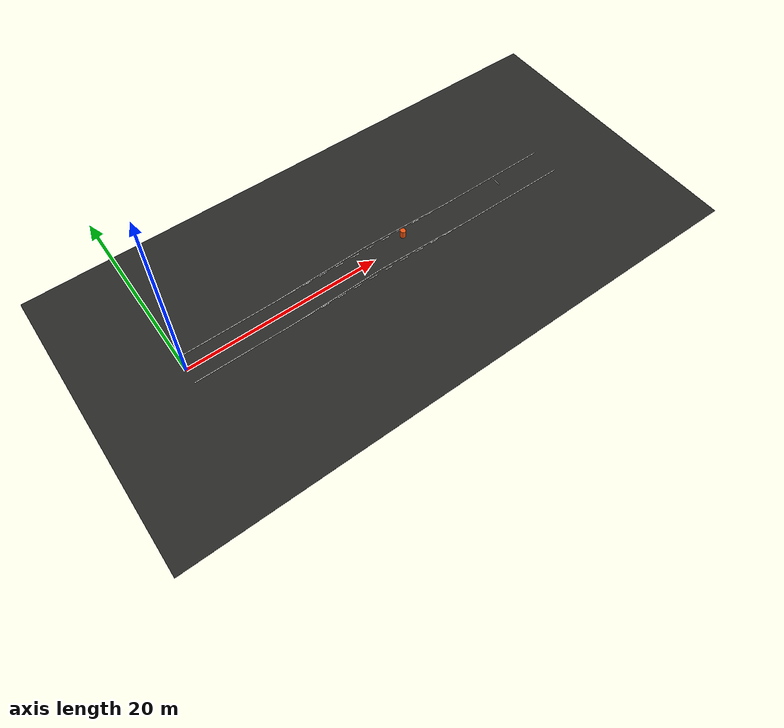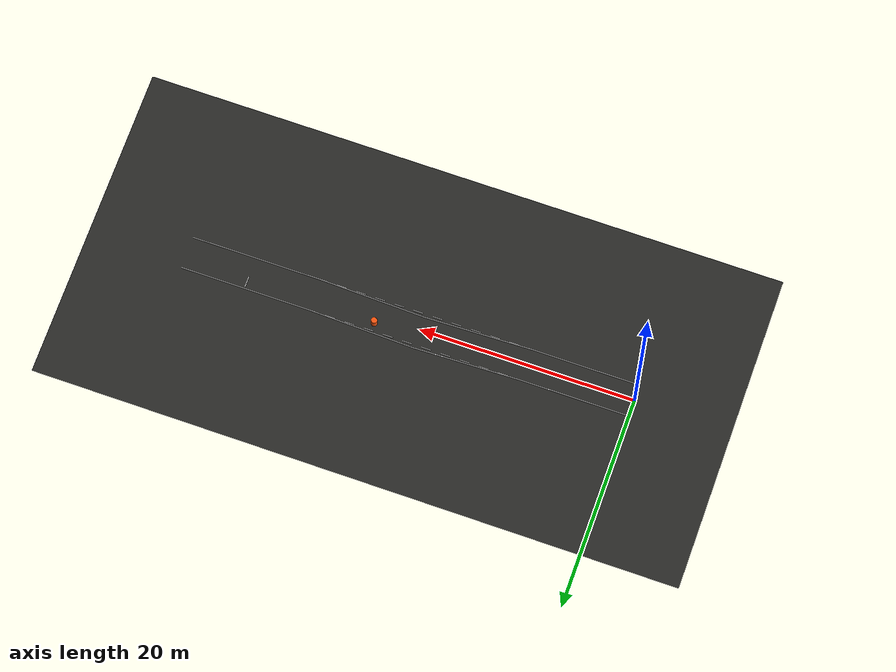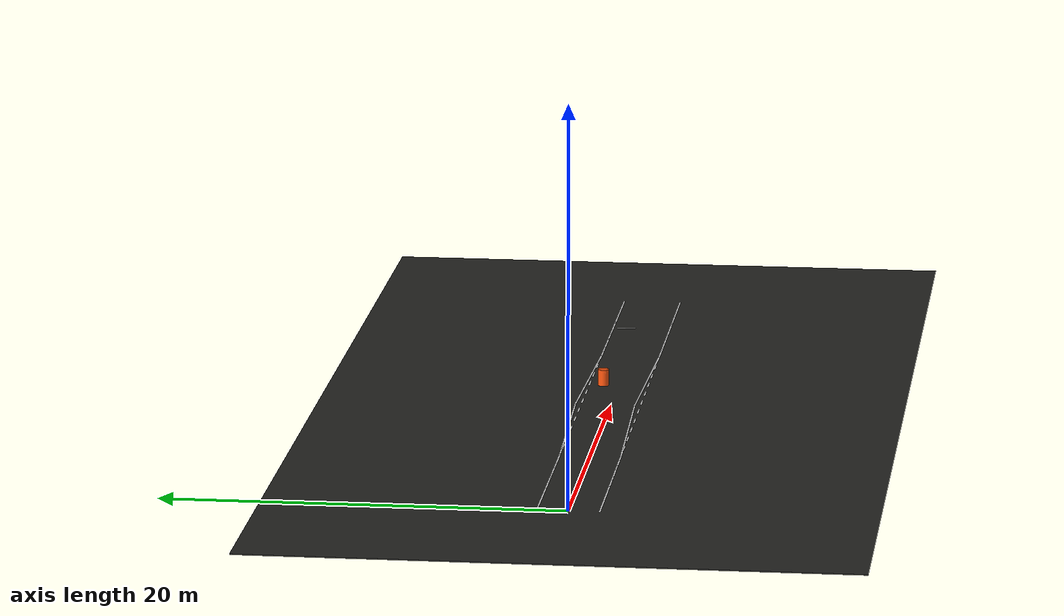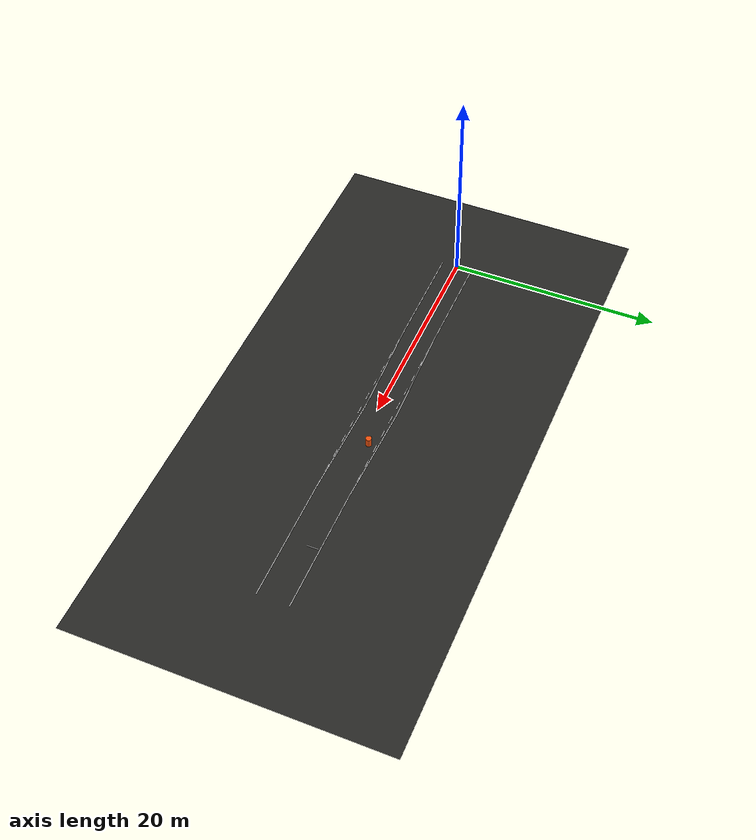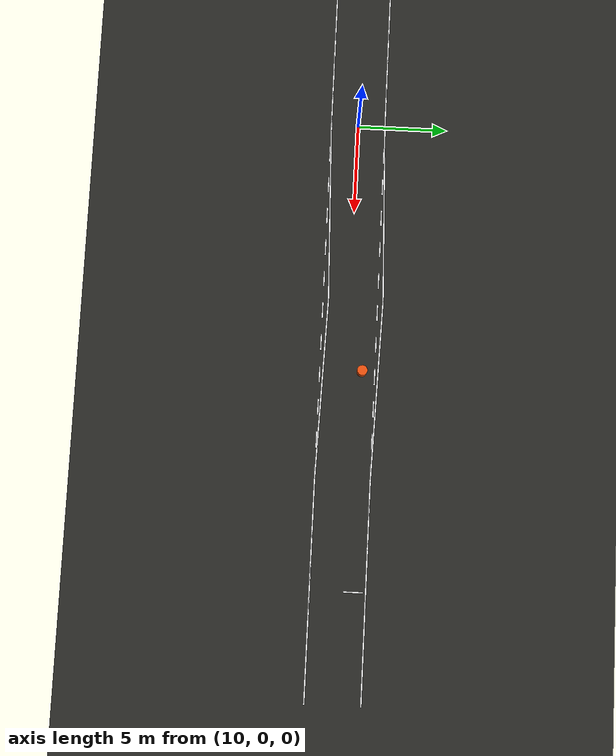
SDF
<sdf version="1.9">
 <world name="igvc_competition">
  <plugin filename="ignition-gazebo-physics-system" name="ignition::gazebo::systems::Physics"/>
  <plugin filename="ignition-gazebo-user-commands-system" name="ignition::gazebo::systems::UserCommands"/>
  <plugin filename="ignition-gazebo-scene-broadcaster-system" name="ignition::gazebo::systems::SceneBroadcaster"/>
  <plugin filename="ignition-gazebo-sensors-system" name="ignition::gazebo::systems::Sensors">
   <render_engine>ogre2</render_engine>
  </plugin>
  <light name="sun" type="directional">
   <pose>0 0 20 0 0 0</pose>
   <diffuse>0.8 0.8 0.75 1</diffuse>
   <specular>0.2 0.2 0.2 1</specular>
   <direction>-0.35 0.15 -0.92</direction>
  </light>
  <gravity>0 0 -9.80665</gravity>
  <magnetic_field>6e-06 2.3e-05 -4.2e-05</magnetic_field>
  <atmosphere type="adiabatic"/>
  <physics name="default_physics" type="ode">
   <max_step_size>0.010</max_step_size>
   <real_time_factor>1.0</real_time_factor>
   <real_time_update_rate>100</real_time_update_rate>
  </physics>
  <scene>
   <ambient>0.45 0.45 0.45 1</ambient>
   <background>0.70 0.72 0.75 1</background>
   <shadows>true</shadows>
  </scene>
  <spherical_coordinates>
   <surface_model>EARTH_WGS84</surface_model>
   <latitude_deg>37.23027000</latitude_deg>
   <longitude_deg>-80.42504000</longitude_deg>
   <elevation>650.000</elevation>
   <heading_deg>0</heading_deg>
  </spherical_coordinates>
  <model name="asphalt_ground">
   <static>1</static>
   <pose>21.0000 0.0000 -0.0250 0.000000 0.000000 0.000000</pose>
   <link name="link">
    <collision name="collision"><geometry><box><size>60.0000 30.0000 0.0500</size></box></geometry></collision>
    <visual name="visual">
     <geometry><box><size>60.0000 30.0000 0.0500</size></box></geometry>
     <material>
      <ambient>0.16 0.16 0.15 1.0</ambient>
      <diffuse>0.16 0.16 0.15 1.0</diffuse>
      <specular>0.05 0.05 0.05 1</specular>
     </material>
    </visual>
   </link>
  </model>
  <model name="left_boundary_0">
   <static>1</static>
   <pose>4.9886 1.5239 0.011 0 0 -0.000017</pose>
   <link name="link">
    <visual name="visual">
     <geometry><box><size>9.9771 0.0762 0.012</size></box></geometry>
     <material>
      <ambient>0.98 0.98 0.98 1</ambient>
      <diffuse>0.98 0.98 0.98 1</diffuse>
      <specular>0.05 0.05 0.05 1</specular>
      <emissive>0.9 0.9 0.9 1</emissive>
     </material>
    </visual>
   </link>
  </model>
  <model name="right_boundary_0">
   <static>1</static>
   <pose>5.0114 -1.5239 0.011 0 0 0.000017</pose>
   <link name="link">
    <visual name="visual">
     <geometry><box><size>10.0229 0.0762 0.012</size></box></geometry>
     <material>
      <ambient>0.98 0.98 0.98 1</ambient>
      <diffuse>0.98 0.98 0.98 1</diffuse>
      <specular>0.05 0.05 0.05 1</specular>
      <emissive>0.9 0.9 0.9 1</emissive>
     </material>
    </visual>
   </link>
  </model>
  <model name="left_boundary_1">
   <static>1</static>
   <pose>14.9886 1.6739 0.011 0 0 0.029940</pose>
   <link name="link">
    <visual name="visual">
     <geometry><box><size>10.0274 0.0762 0.012</size></box></geometry>
     <material>
      <ambient>0.98 0.98 0.98 1</ambient>
      <diffuse>0.98 0.98 0.98 1</diffuse>
      <specular>0.05 0.05 0.05 1</specular>
      <emissive>0.9 0.9 0.9 1</emissive>
     </material>
    </visual>
   </link>
  </model>
  <model name="right_boundary_1">
   <static>1</static>
   <pose>15.0114 -1.3739 0.011 0 0 0.030043</pose>
   <link name="link">
    <visual name="visual">
     <geometry><box><size>9.9816 0.0762 0.012</size></box></geometry>
     <material>
      <ambient>0.98 0.98 0.98 1</ambient>
      <diffuse>0.98 0.98 0.98 1</diffuse>
      <specular>0.05 0.05 0.05 1</specular>
      <emissive>0.9 0.9 0.9 1</emissive>
     </material>
    </visual>
   </link>
  </model>
  <model name="left_boundary_2">
   <static>1</static>
   <pose>25.0104 1.6739 0.011 0 0 -0.029943</pose>
   <link name="link">
    <visual name="visual">
     <geometry><box><size>10.0253 0.0762 0.012</size></box></geometry>
     <material>
      <ambient>0.98 0.98 0.98 1</ambient>
      <diffuse>0.98 0.98 0.98 1</diffuse>
      <specular>0.05 0.05 0.05 1</specular>
      <emissive>0.9 0.9 0.9 1</emissive>
     </material>
    </visual>
   </link>
  </model>
  <model name="right_boundary_2">
   <static>1</static>
   <pose>24.9896 -1.3739 0.011 0 0 -0.030039</pose>
   <link name="link">
    <visual name="visual">
     <geometry><box><size>9.9837 0.0762 0.012</size></box></geometry>
     <material>
      <ambient>0.98 0.98 0.98 1</ambient>
      <diffuse>0.98 0.98 0.98 1</diffuse>
      <specular>0.05 0.05 0.05 1</specular>
      <emissive>0.9 0.9 0.9 1</emissive>
     </material>
    </visual>
   </link>
  </model>
  <model name="left_boundary_3">
   <static>1</static>
   <pose>36.0104 1.5239 0.011 0 0 0.000012</pose>
   <link name="link">
    <visual name="visual">
     <geometry><box><size>11.9792 0.0762 0.012</size></box></geometry>
     <material>
      <ambient>0.98 0.98 0.98 1</ambient>
      <diffuse>0.98 0.98 0.98 1</diffuse>
      <specular>0.05 0.05 0.05 1</specular>
      <emissive>0.9 0.9 0.9 1</emissive>
     </material>
    </visual>
   </link>
  </model>
  <model name="right_boundary_3">
   <static>1</static>
   <pose>35.9896 -1.5239 0.011 0 0 -0.000012</pose>
   <link name="link">
    <visual name="visual">
     <geometry><box><size>12.0208 0.0762 0.012</size></box></geometry>
     <material>
      <ambient>0.98 0.98 0.98 1</ambient>
      <diffuse>0.98 0.98 0.98 1</diffuse>
      <specular>0.05 0.05 0.05 1</specular>
      <emissive>0.9 0.9 0.9 1</emissive>
     </material>
    </visual>
   </link>
  </model>
  <model name="internal_no_cross_far">
   <static>1</static>
   <pose>36.0000 0.8500 0.011 0 0 -1.570796</pose>
   <link name="link">
    <visual name="visual">
     <geometry><box><size>1.1000 0.0762 0.012</size></box></geometry>
     <material>
      <ambient>0.98 0.98 0.98 1</ambient>
      <diffuse>0.98 0.98 0.98 1</diffuse>
      <specular>0.05 0.05 0.05 1</specular>
      <emissive>0.9 0.9 0.9 1</emissive>
     </material>
    </visual>
   </link>
  </model>
  <model name="dashed_left_long_0">
   <static>1</static>
   <pose>4.4500 1.5240 0.011 0 0 0.000000</pose>
   <link name="link">
    <visual name="visual">
     <geometry><box><size>0.9000 0.0762 0.012</size></box></geometry>
     <material>
      <ambient>0.98 0.98 0.98 1</ambient>
      <diffuse>0.98 0.98 0.98 1</diffuse>
      <specular>0.05 0.05 0.05 1</specular>
      <emissive>0.9 0.9 0.9 1</emissive>
     </material>
    </visual>
   </link>
  </model>
  <model name="dashed_left_long_1">
   <static>1</static>
   <pose>6.2500 1.5240 0.011 0 0 0.000000</pose>
   <link name="link">
    <visual name="visual">
     <geometry><box><size>0.9000 0.0762 0.012</size></box></geometry>
     <material>
      <ambient>0.98 0.98 0.98 1</ambient>
      <diffuse>0.98 0.98 0.98 1</diffuse>
      <specular>0.05 0.05 0.05 1</specular>
      <emissive>0.9 0.9 0.9 1</emissive>
     </material>
    </visual>
   </link>
  </model>
  <model name="dashed_left_long_2">
   <static>1</static>
   <pose>8.0500 1.5240 0.011 0 0 0.000000</pose>
   <link name="link">
    <visual name="visual">
     <geometry><box><size>0.9000 0.0762 0.012</size></box></geometry>
     <material>
      <ambient>0.98 0.98 0.98 1</ambient>
      <diffuse>0.98 0.98 0.98 1</diffuse>
      <specular>0.05 0.05 0.05 1</specular>
      <emissive>0.9 0.9 0.9 1</emissive>
     </material>
    </visual>
   </link>
  </model>
  <model name="dashed_left_long_3">
   <static>1</static>
   <pose>9.8500 1.5240 0.011 0 0 0.000000</pose>
   <link name="link">
    <visual name="visual">
     <geometry><box><size>0.9000 0.0762 0.012</size></box></geometry>
     <material>
      <ambient>0.98 0.98 0.98 1</ambient>
      <diffuse>0.98 0.98 0.98 1</diffuse>
      <specular>0.05 0.05 0.05 1</specular>
      <emissive>0.9 0.9 0.9 1</emissive>
     </material>
    </visual>
   </link>
  </model>
  <model name="dashed_left_long_4">
   <static>1</static>
   <pose>11.6500 1.5240 0.011 0 0 0.000000</pose>
   <link name="link">
    <visual name="visual">
     <geometry><box><size>0.9000 0.0762 0.012</size></box></geometry>
     <material>
      <ambient>0.98 0.98 0.98 1</ambient>
      <diffuse>0.98 0.98 0.98 1</diffuse>
      <specular>0.05 0.05 0.05 1</specular>
      <emissive>0.9 0.9 0.9 1</emissive>
     </material>
    </visual>
   </link>
  </model>
  <model name="dashed_left_long_5">
   <static>1</static>
   <pose>13.4500 1.5240 0.011 0 0 0.000000</pose>
   <link name="link">
    <visual name="visual">
     <geometry><box><size>0.9000 0.0762 0.012</size></box></geometry>
     <material>
      <ambient>0.98 0.98 0.98 1</ambient>
      <diffuse>0.98 0.98 0.98 1</diffuse>
      <specular>0.05 0.05 0.05 1</specular>
      <emissive>0.9 0.9 0.9 1</emissive>
     </material>
    </visual>
   </link>
  </model>
  <model name="dashed_left_long_6">
   <static>1</static>
   <pose>15.2500 1.5240 0.011 0 0 0.000000</pose>
   <link name="link">
    <visual name="visual">
     <geometry><box><size>0.9000 0.0762 0.012</size></box></geometry>
     <material>
      <ambient>0.98 0.98 0.98 1</ambient>
      <diffuse>0.98 0.98 0.98 1</diffuse>
      <specular>0.05 0.05 0.05 1</specular>
      <emissive>0.9 0.9 0.9 1</emissive>
     </material>
    </visual>
   </link>
  </model>
  <model name="dashed_left_long_7">
   <static>1</static>
   <pose>17.0500 1.5240 0.011 0 0 0.000000</pose>
   <link name="link">
    <visual name="visual">
     <geometry><box><size>0.9000 0.0762 0.012</size></box></geometry>
     <material>
      <ambient>0.98 0.98 0.98 1</ambient>
      <diffuse>0.98 0.98 0.98 1</diffuse>
      <specular>0.05 0.05 0.05 1</specular>
      <emissive>0.9 0.9 0.9 1</emissive>
     </material>
    </visual>
   </link>
  </model>
  <model name="dashed_left_long_8">
   <static>1</static>
   <pose>18.8500 1.5240 0.011 0 0 0.000000</pose>
   <link name="link">
    <visual name="visual">
     <geometry><box><size>0.9000 0.0762 0.012</size></box></geometry>
     <material>
      <ambient>0.98 0.98 0.98 1</ambient>
      <diffuse>0.98 0.98 0.98 1</diffuse>
      <specular>0.05 0.05 0.05 1</specular>
      <emissive>0.9 0.9 0.9 1</emissive>
     </material>
    </visual>
   </link>
  </model>
  <model name="dashed_left_long_9">
   <static>1</static>
   <pose>20.6500 1.5240 0.011 0 0 0.000000</pose>
   <link name="link">
    <visual name="visual">
     <geometry><box><size>0.9000 0.0762 0.012</size></box></geometry>
     <material>
      <ambient>0.98 0.98 0.98 1</ambient>
      <diffuse>0.98 0.98 0.98 1</diffuse>
      <specular>0.05 0.05 0.05 1</specular>
      <emissive>0.9 0.9 0.9 1</emissive>
     </material>
    </visual>
   </link>
  </model>
  <model name="dashed_left_long_10">
   <static>1</static>
   <pose>22.4500 1.5240 0.011 0 0 0.000000</pose>
   <link name="link">
    <visual name="visual">
     <geometry><box><size>0.9000 0.0762 0.012</size></box></geometry>
     <material>
      <ambient>0.98 0.98 0.98 1</ambient>
      <diffuse>0.98 0.98 0.98 1</diffuse>
      <specular>0.05 0.05 0.05 1</specular>
      <emissive>0.9 0.9 0.9 1</emissive>
     </material>
    </visual>
   </link>
  </model>
  <model name="dashed_left_long_11">
   <static>1</static>
   <pose>24.2500 1.5240 0.011 0 0 0.000000</pose>
   <link name="link">
    <visual name="visual">
     <geometry><box><size>0.9000 0.0762 0.012</size></box></geometry>
     <material>
      <ambient>0.98 0.98 0.98 1</ambient>
      <diffuse>0.98 0.98 0.98 1</diffuse>
      <specular>0.05 0.05 0.05 1</specular>
      <emissive>0.9 0.9 0.9 1</emissive>
     </material>
    </visual>
   </link>
  </model>
  <model name="dashed_left_long_12">
   <static>1</static>
   <pose>26.0500 1.5240 0.011 0 0 0.000000</pose>
   <link name="link">
    <visual name="visual">
     <geometry><box><size>0.9000 0.0762 0.012</size></box></geometry>
     <material>
      <ambient>0.98 0.98 0.98 1</ambient>
      <diffuse>0.98 0.98 0.98 1</diffuse>
      <specular>0.05 0.05 0.05 1</specular>
      <emissive>0.9 0.9 0.9 1</emissive>
     </material>
    </visual>
   </link>
  </model>
  <model name="dashed_left_long_13">
   <static>1</static>
   <pose>27.8500 1.5240 0.011 0 0 0.000000</pose>
   <link name="link">
    <visual name="visual">
     <geometry><box><size>0.9000 0.0762 0.012</size></box></geometry>
     <material>
      <ambient>0.98 0.98 0.98 1</ambient>
      <diffuse>0.98 0.98 0.98 1</diffuse>
      <specular>0.05 0.05 0.05 1</specular>
      <emissive>0.9 0.9 0.9 1</emissive>
     </material>
    </visual>
   </link>
  </model>
  <model name="dashed_left_long_14">
   <static>1</static>
   <pose>29.6500 1.5240 0.011 0 0 0.000000</pose>
   <link name="link">
    <visual name="visual">
     <geometry><box><size>0.9000 0.0762 0.012</size></box></geometry>
     <material>
      <ambient>0.98 0.98 0.98 1</ambient>
      <diffuse>0.98 0.98 0.98 1</diffuse>
      <specular>0.05 0.05 0.05 1</specular>
      <emissive>0.9 0.9 0.9 1</emissive>
     </material>
    </visual>
   </link>
  </model>
  <model name="dashed_left_long_15">
   <static>1</static>
   <pose>31.4500 1.5240 0.011 0 0 0.000000</pose>
   <link name="link">
    <visual name="visual">
     <geometry><box><size>0.9000 0.0762 0.012</size></box></geometry>
     <material>
      <ambient>0.98 0.98 0.98 1</ambient>
      <diffuse>0.98 0.98 0.98 1</diffuse>
      <specular>0.05 0.05 0.05 1</specular>
      <emissive>0.9 0.9 0.9 1</emissive>
     </material>
    </visual>
   </link>
  </model>
  <model name="dashed_left_long_16">
   <static>1</static>
   <pose>33.2500 1.5240 0.011 0 0 0.000000</pose>
   <link name="link">
    <visual name="visual">
     <geometry><box><size>0.9000 0.0762 0.012</size></box></geometry>
     <material>
      <ambient>0.98 0.98 0.98 1</ambient>
      <diffuse>0.98 0.98 0.98 1</diffuse>
      <specular>0.05 0.05 0.05 1</specular>
      <emissive>0.9 0.9 0.9 1</emissive>
     </material>
    </visual>
   </link>
  </model>
  <model name="dashed_left_long_17">
   <static>1</static>
   <pose>35.0500 1.5240 0.011 0 0 0.000000</pose>
   <link name="link">
    <visual name="visual">
     <geometry><box><size>0.9000 0.0762 0.012</size></box></geometry>
     <material>
      <ambient>0.98 0.98 0.98 1</ambient>
      <diffuse>0.98 0.98 0.98 1</diffuse>
      <specular>0.05 0.05 0.05 1</specular>
      <emissive>0.9 0.9 0.9 1</emissive>
     </material>
    </visual>
   </link>
  </model>
  <model name="dashed_left_long_18">
   <static>1</static>
   <pose>36.8500 1.5240 0.011 0 0 0.000000</pose>
   <link name="link">
    <visual name="visual">
     <geometry><box><size>0.9000 0.0762 0.012</size></box></geometry>
     <material>
      <ambient>0.98 0.98 0.98 1</ambient>
      <diffuse>0.98 0.98 0.98 1</diffuse>
      <specular>0.05 0.05 0.05 1</specular>
      <emissive>0.9 0.9 0.9 1</emissive>
     </material>
    </visual>
   </link>
  </model>
  <model name="dashed_right_long_0">
   <static>1</static>
   <pose>4.4500 -1.5240 0.011 0 0 0.000000</pose>
   <link name="link">
    <visual name="visual">
     <geometry><box><size>0.9000 0.0762 0.012</size></box></geometry>
     <material>
      <ambient>0.98 0.98 0.98 1</ambient>
      <diffuse>0.98 0.98 0.98 1</diffuse>
      <specular>0.05 0.05 0.05 1</specular>
      <emissive>0.9 0.9 0.9 1</emissive>
     </material>
    </visual>
   </link>
  </model>
  <model name="dashed_right_long_1">
   <static>1</static>
   <pose>6.2500 -1.5240 0.011 0 0 0.000000</pose>
   <link name="link">
    <visual name="visual">
     <geometry><box><size>0.9000 0.0762 0.012</size></box></geometry>
     <material>
      <ambient>0.98 0.98 0.98 1</ambient>
      <diffuse>0.98 0.98 0.98 1</diffuse>
      <specular>0.05 0.05 0.05 1</specular>
      <emissive>0.9 0.9 0.9 1</emissive>
     </material>
    </visual>
   </link>
  </model>
  <model name="dashed_right_long_2">
   <static>1</static>
   <pose>8.0500 -1.5240 0.011 0 0 0.000000</pose>
   <link name="link">
    <visual name="visual">
     <geometry><box><size>0.9000 0.0762 0.012</size></box></geometry>
     <material>
      <ambient>0.98 0.98 0.98 1</ambient>
      <diffuse>0.98 0.98 0.98 1</diffuse>
      <specular>0.05 0.05 0.05 1</specular>
      <emissive>0.9 0.9 0.9 1</emissive>
     </material>
    </visual>
   </link>
  </model>
  <model name="dashed_right_long_3">
   <static>1</static>
   <pose>9.8500 -1.5240 0.011 0 0 0.000000</pose>
   <link name="link">
    <visual name="visual">
     <geometry><box><size>0.9000 0.0762 0.012</size></box></geometry>
     <material>
      <ambient>0.98 0.98 0.98 1</ambient>
      <diffuse>0.98 0.98 0.98 1</diffuse>
      <specular>0.05 0.05 0.05 1</specular>
      <emissive>0.9 0.9 0.9 1</emissive>
     </material>
    </visual>
   </link>
  </model>
  <model name="dashed_right_long_4">
   <static>1</static>
   <pose>11.6500 -1.5240 0.011 0 0 0.000000</pose>
   <link name="link">
    <visual name="visual">
     <geometry><box><size>0.9000 0.0762 0.012</size></box></geometry>
     <material>
      <ambient>0.98 0.98 0.98 1</ambient>
      <diffuse>0.98 0.98 0.98 1</diffuse>
      <specular>0.05 0.05 0.05 1</specular>
      <emissive>0.9 0.9 0.9 1</emissive>
     </material>
    </visual>
   </link>
  </model>
  <model name="dashed_right_long_5">
   <static>1</static>
   <pose>13.4500 -1.5240 0.011 0 0 0.000000</pose>
   <link name="link">
    <visual name="visual">
     <geometry><box><size>0.9000 0.0762 0.012</size></box></geometry>
     <material>
      <ambient>0.98 0.98 0.98 1</ambient>
      <diffuse>0.98 0.98 0.98 1</diffuse>
      <specular>0.05 0.05 0.05 1</specular>
      <emissive>0.9 0.9 0.9 1</emissive>
     </material>
    </visual>
   </link>
  </model>
  <model name="dashed_right_long_6">
   <static>1</static>
   <pose>15.2500 -1.5240 0.011 0 0 0.000000</pose>
   <link name="link">
    <visual name="visual">
     <geometry><box><size>0.9000 0.0762 0.012</size></box></geometry>
     <material>
      <ambient>0.98 0.98 0.98 1</ambient>
      <diffuse>0.98 0.98 0.98 1</diffuse>
      <specular>0.05 0.05 0.05 1</specular>
      <emissive>0.9 0.9 0.9 1</emissive>
     </material>
    </visual>
   </link>
  </model>
  <model name="dashed_right_long_7">
   <static>1</static>
   <pose>17.0500 -1.5240 0.011 0 0 0.000000</pose>
   <link name="link">
    <visual name="visual">
     <geometry><box><size>0.9000 0.0762 0.012</size></box></geometry>
     <material>
      <ambient>0.98 0.98 0.98 1</ambient>
      <diffuse>0.98 0.98 0.98 1</diffuse>
      <specular>0.05 0.05 0.05 1</specular>
      <emissive>0.9 0.9 0.9 1</emissive>
     </material>
    </visual>
   </link>
  </model>
  <model name="dashed_right_long_8">
   <static>1</static>
   <pose>18.8500 -1.5240 0.011 0 0 0.000000</pose>
   <link name="link">
    <visual name="visual">
     <geometry><box><size>0.9000 0.0762 0.012</size></box></geometry>
     <material>
      <ambient>0.98 0.98 0.98 1</ambient>
      <diffuse>0.98 0.98 0.98 1</diffuse>
      <specular>0.05 0.05 0.05 1</specular>
      <emissive>0.9 0.9 0.9 1</emissive>
     </material>
    </visual>
   </link>
  </model>
  <model name="dashed_right_long_9">
   <static>1</static>
   <pose>20.6500 -1.5240 0.011 0 0 0.000000</pose>
   <link name="link">
    <visual name="visual">
     <geometry><box><size>0.9000 0.0762 0.012</size></box></geometry>
     <material>
      <ambient>0.98 0.98 0.98 1</ambient>
      <diffuse>0.98 0.98 0.98 1</diffuse>
      <specular>0.05 0.05 0.05 1</specular>
      <emissive>0.9 0.9 0.9 1</emissive>
     </material>
    </visual>
   </link>
  </model>
  <model name="dashed_right_long_10">
   <static>1</static>
   <pose>22.4500 -1.5240 0.011 0 0 0.000000</pose>
   <link name="link">
    <visual name="visual">
     <geometry><box><size>0.9000 0.0762 0.012</size></box></geometry>
     <material>
      <ambient>0.98 0.98 0.98 1</ambient>
      <diffuse>0.98 0.98 0.98 1</diffuse>
      <specular>0.05 0.05 0.05 1</specular>
      <emissive>0.9 0.9 0.9 1</emissive>
     </material>
    </visual>
   </link>
  </model>
  <model name="dashed_right_long_11">
   <static>1</static>
   <pose>24.2500 -1.5240 0.011 0 0 0.000000</pose>
   <link name="link">
    <visual name="visual">
     <geometry><box><size>0.9000 0.0762 0.012</size></box></geometry>
     <material>
      <ambient>0.98 0.98 0.98 1</ambient>
      <diffuse>0.98 0.98 0.98 1</diffuse>
      <specular>0.05 0.05 0.05 1</specular>
      <emissive>0.9 0.9 0.9 1</emissive>
     </material>
    </visual>
   </link>
  </model>
  <model name="dashed_right_long_12">
   <static>1</static>
   <pose>26.0500 -1.5240 0.011 0 0 0.000000</pose>
   <link name="link">
    <visual name="visual">
     <geometry><box><size>0.9000 0.0762 0.012</size></box></geometry>
     <material>
      <ambient>0.98 0.98 0.98 1</ambient>
      <diffuse>0.98 0.98 0.98 1</diffuse>
      <specular>0.05 0.05 0.05 1</specular>
      <emissive>0.9 0.9 0.9 1</emissive>
     </material>
    </visual>
   </link>
  </model>
  <model name="dashed_right_long_13">
   <static>1</static>
   <pose>27.8500 -1.5240 0.011 0 0 0.000000</pose>
   <link name="link">
    <visual name="visual">
     <geometry><box><size>0.9000 0.0762 0.012</size></box></geometry>
     <material>
      <ambient>0.98 0.98 0.98 1</ambient>
      <diffuse>0.98 0.98 0.98 1</diffuse>
      <specular>0.05 0.05 0.05 1</specular>
      <emissive>0.9 0.9 0.9 1</emissive>
     </material>
    </visual>
   </link>
  </model>
  <model name="dashed_right_long_14">
   <static>1</static>
   <pose>29.6500 -1.5240 0.011 0 0 0.000000</pose>
   <link name="link">
    <visual name="visual">
     <geometry><box><size>0.9000 0.0762 0.012</size></box></geometry>
     <material>
      <ambient>0.98 0.98 0.98 1</ambient>
      <diffuse>0.98 0.98 0.98 1</diffuse>
      <specular>0.05 0.05 0.05 1</specular>
      <emissive>0.9 0.9 0.9 1</emissive>
     </material>
    </visual>
   </link>
  </model>
  <model name="dashed_right_long_15">
   <static>1</static>
   <pose>31.4500 -1.5240 0.011 0 0 0.000000</pose>
   <link name="link">
    <visual name="visual">
     <geometry><box><size>0.9000 0.0762 0.012</size></box></geometry>
     <material>
      <ambient>0.98 0.98 0.98 1</ambient>
      <diffuse>0.98 0.98 0.98 1</diffuse>
      <specular>0.05 0.05 0.05 1</specular>
      <emissive>0.9 0.9 0.9 1</emissive>
     </material>
    </visual>
   </link>
  </model>
  <model name="dashed_right_long_16">
   <static>1</static>
   <pose>33.2500 -1.5240 0.011 0 0 0.000000</pose>
   <link name="link">
    <visual name="visual">
     <geometry><box><size>0.9000 0.0762 0.012</size></box></geometry>
     <material>
      <ambient>0.98 0.98 0.98 1</ambient>
      <diffuse>0.98 0.98 0.98 1</diffuse>
      <specular>0.05 0.05 0.05 1</specular>
      <emissive>0.9 0.9 0.9 1</emissive>
     </material>
    </visual>
   </link>
  </model>
  <model name="dashed_right_long_17">
   <static>1</static>
   <pose>35.0500 -1.5240 0.011 0 0 0.000000</pose>
   <link name="link">
    <visual name="visual">
     <geometry><box><size>0.9000 0.0762 0.012</size></box></geometry>
     <material>
      <ambient>0.98 0.98 0.98 1</ambient>
      <diffuse>0.98 0.98 0.98 1</diffuse>
      <specular>0.05 0.05 0.05 1</specular>
      <emissive>0.9 0.9 0.9 1</emissive>
     </material>
    </visual>
   </link>
  </model>
  <model name="dashed_right_long_18">
   <static>1</static>
   <pose>36.8500 -1.5240 0.011 0 0 0.000000</pose>
   <link name="link">
    <visual name="visual">
     <geometry><box><size>0.9000 0.0762 0.012</size></box></geometry>
     <material>
      <ambient>0.98 0.98 0.98 1</ambient>
      <diffuse>0.98 0.98 0.98 1</diffuse>
      <specular>0.05 0.05 0.05 1</specular>
      <emissive>0.9 0.9 0.9 1</emissive>
     </material>
    </visual>
   </link>
  </model>
  <model name="lone_barrel">
   <static>1</static>
   <pose>24.0000 0.8000 0 0 0 0</pose>
   <link name="link">
    <collision name="collision">
     <pose>0 0 0.4250 0 0 0</pose>
     <geometry><cylinder><radius>0.2800</radius><length>0.8500</length></cylinder></geometry>
    </collision>
    <visual name="visual">
     <pose>0 0 0.4250 0 0 0</pose>
     <geometry><cylinder><radius>0.2800</radius><length>0.8500</length></cylinder></geometry>
     <material>
      <ambient>0.95 0.32 0.05 1.0</ambient>
      <diffuse>0.95 0.32 0.05 1.0</diffuse>
      <specular>0.05 0.05 0.05 1</specular>
     </material>
    </visual>
   </link>
  </model>
 </world>
</sdf>
